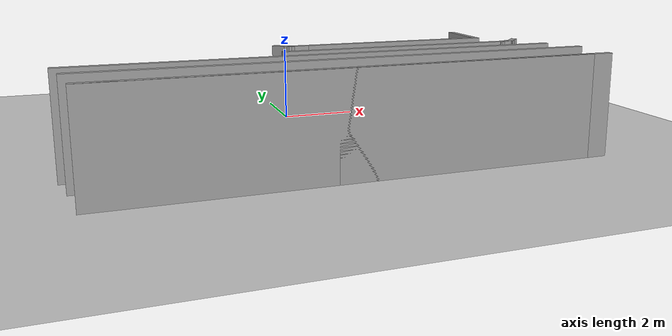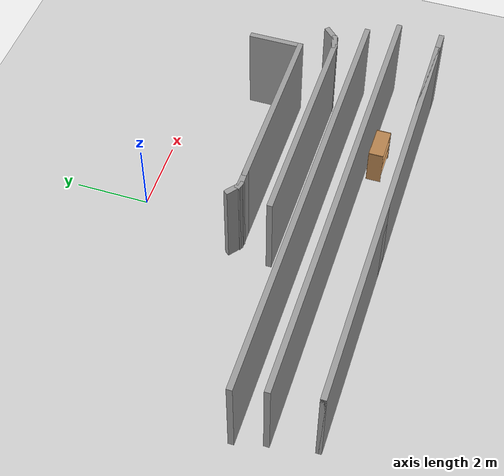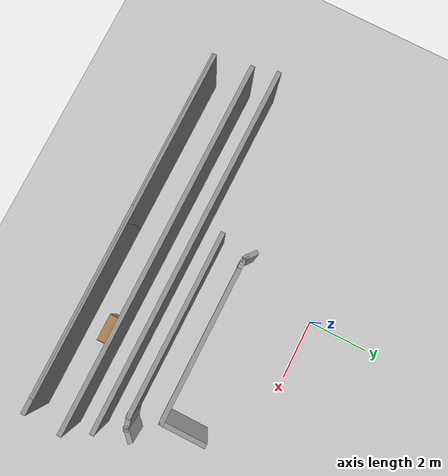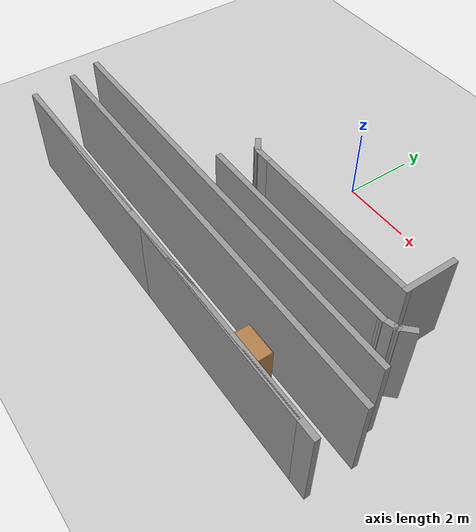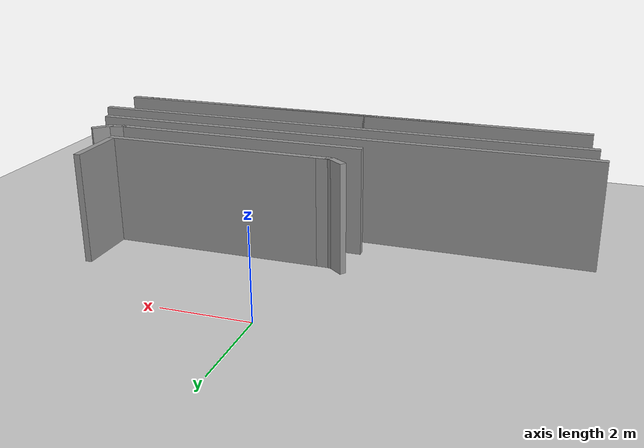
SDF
<sdf version="1.7">
 <world name="default">
  <model name="ground_plane">
   <static>1</static>
   <link name="link">
    <collision name="collision">
     <geometry><plane><normal>0 0 1</normal><size>100 100</size></plane></geometry>
     <surface>
      <contact><collide_bitmask>65535</collide_bitmask></contact>
      <friction><ode><mu>100</mu><mu2>50</mu2></ode></friction>
     </surface>
    </collision>
    <visual name="visual">
     <cast_shadows>0</cast_shadows>
     <geometry><plane><normal>0 0 1</normal><size>100 100</size></plane></geometry>
     <material>
      <script><uri>file://media/materials/scripts/gazebo.material</uri><name>Gazebo/Grey</name></script>
     </material>
    </visual>
   </link>
  </model>
  <model name="Race_Track">
   <link name="Wall_0">
    <pose>2.08957 -6.00796 0 0 -0 0</pose>
    <visual name="Wall_0_Visual">
     <pose>0 0 1.25 0 -0 0</pose>
     <geometry><box><size>6.25 0.15 2.5</size></box></geometry>
     <material>
      <script><uri>file://media/materials/scripts/gazebo.material</uri><name>Gazebo/Grey</name></script>
      <ambient>1 1 1 1</ambient>
      <shader type="pixel"/>
     </material>
     <meta><layer>0</layer></meta>
    </visual>
    <collision name="Wall_0_Collision">
     <pose>0 0 1.25 0 -0 0</pose>
     <geometry><box><size>6.25 0.15 2.5</size></box></geometry>
     <surface>
      <friction>
       <ode><mu>1</mu><mu2>1</mu2><fdir1>0 0 0</fdir1><slip1>0</slip1><slip2>0</slip2></ode>
       <torsional>
        <coefficient>1</coefficient>
        <patch_radius>0</patch_radius>
        <surface_radius>0</surface_radius>
        <use_patch_radius>1</use_patch_radius>
        <ode><slip>0</slip></ode>
       </torsional>
      </friction>
      <bounce><restitution_coefficient>0</restitution_coefficient><threshold>1e+06</threshold></bounce>
      <contact>
       <collide_without_contact>0</collide_without_contact>
       <collide_without_contact_bitmask>1</collide_without_contact_bitmask>
       <collide_bitmask>1</collide_bitmask>
       <ode>
        <soft_cfm>0</soft_cfm>
        <soft_erp>0.2</soft_erp>
        <kp>1e+13</kp>
        <kd>1</kd>
        <max_vel>0.01</max_vel>
        <min_depth>0</min_depth>
       </ode>
       <bullet>
        <split_impulse>1</split_impulse>
        <split_impulse_penetration_threshold>-0.01</split_impulse_penetration_threshold>
        <soft_cfm>0</soft_cfm>
        <soft_erp>0.2</soft_erp>
        <kp>1e+13</kp>
        <kd>1</kd>
       </bullet>
      </contact>
     </surface>
    </collision>
   </link>
   <link name="Wall_1">
    <pose>-0.535432 -6.00796 0 0 -0 3.14159</pose>
    <visual name="Wall_1_Visual">
     <pose>0 0 1.25 0 -0 0</pose>
     <geometry><box><size>11.5 0.15 2.5</size></box></geometry>
     <material>
      <script><uri>file://media/materials/scripts/gazebo.material</uri><name>Gazebo/Grey</name></script>
      <ambient>1 1 1 1</ambient>
      <shader type="pixel"/>
     </material>
     <meta><layer>0</layer></meta>
    </visual>
    <collision name="Wall_1_Collision">
     <pose>0 0 1.25 0 -0 0</pose>
     <geometry><box><size>11.5 0.15 2.5</size></box></geometry>
     <surface>
      <friction>
       <ode><mu>1</mu><mu2>1</mu2><fdir1>0 0 0</fdir1><slip1>0</slip1><slip2>0</slip2></ode>
       <torsional>
        <coefficient>1</coefficient>
        <patch_radius>0</patch_radius>
        <surface_radius>0</surface_radius>
        <use_patch_radius>1</use_patch_radius>
        <ode><slip>0</slip></ode>
       </torsional>
      </friction>
      <bounce><restitution_coefficient>0</restitution_coefficient><threshold>1e+06</threshold></bounce>
      <contact>
       <collide_without_contact>0</collide_without_contact>
       <collide_without_contact_bitmask>1</collide_without_contact_bitmask>
       <collide_bitmask>1</collide_bitmask>
       <ode>
        <soft_cfm>0</soft_cfm>
        <soft_erp>0.2</soft_erp>
        <kp>1e+13</kp>
        <kd>1</kd>
        <max_vel>0.01</max_vel>
        <min_depth>0</min_depth>
       </ode>
       <bullet>
        <split_impulse>1</split_impulse>
        <split_impulse_penetration_threshold>-0.01</split_impulse_penetration_threshold>
        <soft_cfm>0</soft_cfm>
        <soft_erp>0.2</soft_erp>
        <kp>1e+13</kp>
        <kd>1</kd>
       </bullet>
      </contact>
     </surface>
    </collision>
   </link>
   <link name="Wall_123">
    <pose>-0.672789 -4.00099 0 0 -0 0</pose>
    <visual name="Wall_123_Visual">
     <pose>0 0 1.25 0 -0 0</pose>
     <geometry><box><size>12 0.15 2.5</size></box></geometry>
     <material>
      <script><uri>file://media/materials/scripts/gazebo.material</uri><name>Gazebo/Grey</name></script>
      <ambient>1 1 1 1</ambient>
      <shader type="pixel"/>
     </material>
     <meta><layer>0</layer></meta>
    </visual>
    <collision name="Wall_123_Collision">
     <pose>0 0 1.25 0 -0 0</pose>
     <geometry><box><size>12 0.15 2.5</size></box></geometry>
     <surface>
      <friction>
       <ode><mu>1</mu><mu2>1</mu2><fdir1>0 0 0</fdir1><slip1>0</slip1><slip2>0</slip2></ode>
       <torsional>
        <coefficient>1</coefficient>
        <patch_radius>0</patch_radius>
        <surface_radius>0</surface_radius>
        <use_patch_radius>1</use_patch_radius>
        <ode><slip>0</slip></ode>
       </torsional>
      </friction>
      <bounce><restitution_coefficient>0</restitution_coefficient><threshold>1e+06</threshold></bounce>
      <contact>
       <collide_without_contact>0</collide_without_contact>
       <collide_without_contact_bitmask>1</collide_without_contact_bitmask>
       <collide_bitmask>1</collide_bitmask>
       <ode>
        <soft_cfm>0</soft_cfm>
        <soft_erp>0.2</soft_erp>
        <kp>1e+13</kp>
        <kd>1</kd>
        <max_vel>0.01</max_vel>
        <min_depth>0</min_depth>
       </ode>
       <bullet>
        <split_impulse>1</split_impulse>
        <split_impulse_penetration_threshold>-0.01</split_impulse_penetration_threshold>
        <soft_cfm>0</soft_cfm>
        <soft_erp>0.2</soft_erp>
        <kp>1e+13</kp>
        <kd>1</kd>
       </bullet>
      </contact>
     </surface>
    </collision>
   </link>
   <link name="Wall_175">
    <pose>1.47041 -3.30041 0 0 -0 0</pose>
    <visual name="Wall_175_Visual">
     <pose>0 0 1.25 0 -0 0</pose>
     <geometry><box><size>6 0.15 2.5</size></box></geometry>
     <material>
      <script><uri>file://media/materials/scripts/gazebo.material</uri><name>Gazebo/Grey</name></script>
      <ambient>1 1 1 1</ambient>
      <shader type="pixel"/>
     </material>
     <meta><layer>0</layer></meta>
    </visual>
    <collision name="Wall_175_Collision">
     <pose>0 0 1.25 0 -0 0</pose>
     <geometry><box><size>6 0.15 2.5</size></box></geometry>
     <surface>
      <friction>
       <ode><mu>1</mu><mu2>1</mu2><fdir1>0 0 0</fdir1><slip1>0</slip1><slip2>0</slip2></ode>
       <torsional>
        <coefficient>1</coefficient>
        <patch_radius>0</patch_radius>
        <surface_radius>0</surface_radius>
        <use_patch_radius>1</use_patch_radius>
        <ode><slip>0</slip></ode>
       </torsional>
      </friction>
      <bounce><restitution_coefficient>0</restitution_coefficient><threshold>1e+06</threshold></bounce>
      <contact>
       <collide_without_contact>0</collide_without_contact>
       <collide_without_contact_bitmask>1</collide_without_contact_bitmask>
       <collide_bitmask>1</collide_bitmask>
       <ode>
        <soft_cfm>0</soft_cfm>
        <soft_erp>0.2</soft_erp>
        <kp>1e+13</kp>
        <kd>1</kd>
        <max_vel>0.01</max_vel>
        <min_depth>0</min_depth>
       </ode>
       <bullet>
        <split_impulse>1</split_impulse>
        <split_impulse_penetration_threshold>-0.01</split_impulse_penetration_threshold>
        <soft_cfm>0</soft_cfm>
        <soft_erp>0.2</soft_erp>
        <kp>1e+13</kp>
        <kd>1</kd>
       </bullet>
      </contact>
     </surface>
    </collision>
   </link>
   <link name="Wall_182">
    <pose>4.56445 -3.25511 0 0 -0 0.261799</pose>
    <visual name="Wall_182_Visual">
     <pose>0 0 1.25 0 -0 0</pose>
     <geometry><box><size>0.5 0.15 2.5</size></box></geometry>
     <material>
      <script><uri>file://media/materials/scripts/gazebo.material</uri><name>Gazebo/Grey</name></script>
      <ambient>1 1 1 1</ambient>
      <shader type="pixel"/>
     </material>
     <meta><layer>0</layer></meta>
    </visual>
    <collision name="Wall_182_Collision">
     <pose>0 0 1.25 0 -0 0</pose>
     <geometry><box><size>0.5 0.15 2.5</size></box></geometry>
     <surface>
      <friction>
       <ode><mu>1</mu><mu2>1</mu2><fdir1>0 0 0</fdir1><slip1>0</slip1><slip2>0</slip2></ode>
       <torsional>
        <coefficient>1</coefficient>
        <patch_radius>0</patch_radius>
        <surface_radius>0</surface_radius>
        <use_patch_radius>1</use_patch_radius>
        <ode><slip>0</slip></ode>
       </torsional>
      </friction>
      <bounce><restitution_coefficient>0</restitution_coefficient><threshold>1e+06</threshold></bounce>
      <contact>
       <collide_without_contact>0</collide_without_contact>
       <collide_without_contact_bitmask>1</collide_without_contact_bitmask>
       <collide_bitmask>1</collide_bitmask>
       <ode>
        <soft_cfm>0</soft_cfm>
        <soft_erp>0.2</soft_erp>
        <kp>1e+13</kp>
        <kd>1</kd>
        <max_vel>0.01</max_vel>
        <min_depth>0</min_depth>
       </ode>
       <bullet>
        <split_impulse>1</split_impulse>
        <split_impulse_penetration_threshold>-0.01</split_impulse_penetration_threshold>
        <soft_cfm>0</soft_cfm>
        <soft_erp>0.2</soft_erp>
        <kp>1e+13</kp>
        <kd>1</kd>
       </bullet>
      </contact>
     </surface>
    </collision>
   </link>
   <link name="Wall_183">
    <pose>4.85723 -3.08608 0 0 -0 0.785398</pose>
    <visual name="Wall_183_Visual">
     <pose>0 0 1.25 0 -0 0</pose>
     <geometry><box><size>0.5 0.15 2.5</size></box></geometry>
     <material>
      <script><uri>file://media/materials/scripts/gazebo.material</uri><name>Gazebo/Grey</name></script>
      <ambient>1 1 1 1</ambient>
      <shader type="pixel"/>
     </material>
     <meta><layer>0</layer></meta>
    </visual>
    <collision name="Wall_183_Collision">
     <pose>0 0 1.25 0 -0 0</pose>
     <geometry><box><size>0.5 0.15 2.5</size></box></geometry>
     <surface>
      <friction>
       <ode><mu>1</mu><mu2>1</mu2><fdir1>0 0 0</fdir1><slip1>0</slip1><slip2>0</slip2></ode>
       <torsional>
        <coefficient>1</coefficient>
        <patch_radius>0</patch_radius>
        <surface_radius>0</surface_radius>
        <use_patch_radius>1</use_patch_radius>
        <ode><slip>0</slip></ode>
       </torsional>
      </friction>
      <bounce><restitution_coefficient>0</restitution_coefficient><threshold>1e+06</threshold></bounce>
      <contact>
       <collide_without_contact>0</collide_without_contact>
       <collide_without_contact_bitmask>1</collide_without_contact_bitmask>
       <collide_bitmask>1</collide_bitmask>
       <ode>
        <soft_cfm>0</soft_cfm>
        <soft_erp>0.2</soft_erp>
        <kp>1e+13</kp>
        <kd>1</kd>
        <max_vel>0.01</max_vel>
        <min_depth>0</min_depth>
       </ode>
       <bullet>
        <split_impulse>1</split_impulse>
        <split_impulse_penetration_threshold>-0.01</split_impulse_penetration_threshold>
        <soft_cfm>0</soft_cfm>
        <soft_erp>0.2</soft_erp>
        <kp>1e+13</kp>
        <kd>1</kd>
       </bullet>
      </contact>
     </surface>
    </collision>
   </link>
   <link name="Wall_193">
    <pose>4.13514 -1.72233 0 0 0 -1.5708</pose>
    <visual name="Wall_193_Visual">
     <pose>0 0 1.25 0 -0 0</pose>
     <geometry><box><size>1.5 0.15 2.5</size></box></geometry>
     <material>
      <script><uri>file://media/materials/scripts/gazebo.material</uri><name>Gazebo/Grey</name></script>
      <ambient>1 1 1 1</ambient>
      <shader type="pixel"/>
     </material>
     <meta><layer>0</layer></meta>
    </visual>
    <collision name="Wall_193_Collision">
     <pose>0 0 1.25 0 -0 0</pose>
     <geometry><box><size>1.5 0.15 2.5</size></box></geometry>
     <surface>
      <friction>
       <ode><mu>1</mu><mu2>1</mu2><fdir1>0 0 0</fdir1><slip1>0</slip1><slip2>0</slip2></ode>
       <torsional>
        <coefficient>1</coefficient>
        <patch_radius>0</patch_radius>
        <surface_radius>0</surface_radius>
        <use_patch_radius>1</use_patch_radius>
        <ode><slip>0</slip></ode>
       </torsional>
      </friction>
      <bounce><restitution_coefficient>0</restitution_coefficient><threshold>1e+06</threshold></bounce>
      <contact>
       <collide_without_contact>0</collide_without_contact>
       <collide_without_contact_bitmask>1</collide_without_contact_bitmask>
       <collide_bitmask>1</collide_bitmask>
       <ode>
        <soft_cfm>0</soft_cfm>
        <soft_erp>0.2</soft_erp>
        <kp>1e+13</kp>
        <kd>1</kd>
        <max_vel>0.01</max_vel>
        <min_depth>0</min_depth>
       </ode>
       <bullet>
        <split_impulse>1</split_impulse>
        <split_impulse_penetration_threshold>-0.01</split_impulse_penetration_threshold>
        <soft_cfm>0</soft_cfm>
        <soft_erp>0.2</soft_erp>
        <kp>1e+13</kp>
        <kd>1</kd>
       </bullet>
      </contact>
     </surface>
    </collision>
   </link>
   <link name="Wall_199">
    <pose>1.71015 -2.39733 0 0 -0 3.14159</pose>
    <visual name="Wall_199_Visual">
     <pose>0 0 1.25 0 -0 0</pose>
     <geometry><box><size>5 0.15 2.5</size></box></geometry>
     <material>
      <script><uri>file://media/materials/scripts/gazebo.material</uri><name>Gazebo/Grey</name></script>
      <ambient>1 1 1 1</ambient>
      <shader type="pixel"/>
     </material>
     <meta><layer>0</layer></meta>
    </visual>
    <collision name="Wall_199_Collision">
     <pose>0 0 1.25 0 -0 0</pose>
     <geometry><box><size>5 0.15 2.5</size></box></geometry>
     <surface>
      <friction>
       <ode><mu>1</mu><mu2>1</mu2><fdir1>0 0 0</fdir1><slip1>0</slip1><slip2>0</slip2></ode>
       <torsional>
        <coefficient>1</coefficient>
        <patch_radius>0</patch_radius>
        <surface_radius>0</surface_radius>
        <use_patch_radius>1</use_patch_radius>
        <ode><slip>0</slip></ode>
       </torsional>
      </friction>
      <bounce><restitution_coefficient>0</restitution_coefficient><threshold>1e+06</threshold></bounce>
      <contact>
       <collide_without_contact>0</collide_without_contact>
       <collide_without_contact_bitmask>1</collide_without_contact_bitmask>
       <collide_bitmask>1</collide_bitmask>
       <ode>
        <soft_cfm>0</soft_cfm>
        <soft_erp>0.2</soft_erp>
        <kp>1e+13</kp>
        <kd>1</kd>
        <max_vel>0.01</max_vel>
        <min_depth>0</min_depth>
       </ode>
       <bullet>
        <split_impulse>1</split_impulse>
        <split_impulse_penetration_threshold>-0.01</split_impulse_penetration_threshold>
        <soft_cfm>0</soft_cfm>
        <soft_erp>0.2</soft_erp>
        <kp>1e+13</kp>
        <kd>1</kd>
       </bullet>
      </contact>
     </surface>
    </collision>
   </link>
   <link name="Wall_2">
    <pose>-0.285432 -6.00796 0 0 -0 0</pose>
    <visual name="Wall_2_Visual">
     <pose>0 0 1.25 0 -0 0</pose>
     <geometry><box><size>12 0.15 2.5</size></box></geometry>
     <material>
      <script><uri>file://media/materials/scripts/gazebo.material</uri><name>Gazebo/Grey</name></script>
      <ambient>1 1 1 1</ambient>
      <shader type="pixel"/>
     </material>
     <meta><layer>0</layer></meta>
    </visual>
    <collision name="Wall_2_Collision">
     <pose>0 0 1.25 0 -0 0</pose>
     <geometry><box><size>12 0.15 2.5</size></box></geometry>
     <surface>
      <friction>
       <ode><mu>1</mu><mu2>1</mu2><fdir1>0 0 0</fdir1><slip1>0</slip1><slip2>0</slip2></ode>
       <torsional>
        <coefficient>1</coefficient>
        <patch_radius>0</patch_radius>
        <surface_radius>0</surface_radius>
        <use_patch_radius>1</use_patch_radius>
        <ode><slip>0</slip></ode>
       </torsional>
      </friction>
      <bounce><restitution_coefficient>0</restitution_coefficient><threshold>1e+06</threshold></bounce>
      <contact>
       <collide_without_contact>0</collide_without_contact>
       <collide_without_contact_bitmask>1</collide_without_contact_bitmask>
       <collide_bitmask>1</collide_bitmask>
       <ode>
        <soft_cfm>0</soft_cfm>
        <soft_erp>0.2</soft_erp>
        <kp>1e+13</kp>
        <kd>1</kd>
        <max_vel>0.01</max_vel>
        <min_depth>0</min_depth>
       </ode>
       <bullet>
        <split_impulse>1</split_impulse>
        <split_impulse_penetration_threshold>-0.01</split_impulse_penetration_threshold>
        <soft_cfm>0</soft_cfm>
        <soft_erp>0.2</soft_erp>
        <kp>1e+13</kp>
        <kd>1</kd>
       </bullet>
      </contact>
     </surface>
    </collision>
   </link>
   <link name="Wall_203">
    <pose>-0.889855 -2.39733 0 0 -0 3.14159</pose>
    <visual name="Wall_203_Visual">
     <pose>0 0 1.25 0 -0 0</pose>
     <geometry><box><size>0.5 0.15 2.5</size></box></geometry>
     <material>
      <script><uri>file://media/materials/scripts/gazebo.material</uri><name>Gazebo/Grey</name></script>
      <ambient>1 1 1 1</ambient>
      <shader type="pixel"/>
     </material>
     <meta><layer>0</layer></meta>
    </visual>
    <collision name="Wall_203_Collision">
     <pose>0 0 1.25 0 -0 0</pose>
     <geometry><box><size>0.5 0.15 2.5</size></box></geometry>
     <surface>
      <friction>
       <ode><mu>1</mu><mu2>1</mu2><fdir1>0 0 0</fdir1><slip1>0</slip1><slip2>0</slip2></ode>
       <torsional>
        <coefficient>1</coefficient>
        <patch_radius>0</patch_radius>
        <surface_radius>0</surface_radius>
        <use_patch_radius>1</use_patch_radius>
        <ode><slip>0</slip></ode>
       </torsional>
      </friction>
      <bounce><restitution_coefficient>0</restitution_coefficient><threshold>1e+06</threshold></bounce>
      <contact>
       <collide_without_contact>0</collide_without_contact>
       <collide_without_contact_bitmask>1</collide_without_contact_bitmask>
       <collide_bitmask>1</collide_bitmask>
       <ode>
        <soft_cfm>0</soft_cfm>
        <soft_erp>0.2</soft_erp>
        <kp>1e+13</kp>
        <kd>1</kd>
        <max_vel>0.01</max_vel>
        <min_depth>0</min_depth>
       </ode>
       <bullet>
        <split_impulse>1</split_impulse>
        <split_impulse_penetration_threshold>-0.01</split_impulse_penetration_threshold>
        <soft_cfm>0</soft_cfm>
        <soft_erp>0.2</soft_erp>
        <kp>1e+13</kp>
        <kd>1</kd>
       </bullet>
      </contact>
     </surface>
    </collision>
   </link>
   <link name="Wall_205">
    <pose>-1.11315 -2.38439 0 0 -0 2.87979</pose>
    <visual name="Wall_205_Visual">
     <pose>0 0 1.25 0 -0 0</pose>
     <geometry><box><size>0.25 0.15 2.5</size></box></geometry>
     <material>
      <script><uri>file://media/materials/scripts/gazebo.material</uri><name>Gazebo/Grey</name></script>
      <ambient>1 1 1 1</ambient>
      <shader type="pixel"/>
     </material>
     <meta><layer>0</layer></meta>
    </visual>
    <collision name="Wall_205_Collision">
     <pose>0 0 1.25 0 -0 0</pose>
     <geometry><box><size>0.25 0.15 2.5</size></box></geometry>
     <surface>
      <friction>
       <ode><mu>1</mu><mu2>1</mu2><fdir1>0 0 0</fdir1><slip1>0</slip1><slip2>0</slip2></ode>
       <torsional>
        <coefficient>1</coefficient>
        <patch_radius>0</patch_radius>
        <surface_radius>0</surface_radius>
        <use_patch_radius>1</use_patch_radius>
        <ode><slip>0</slip></ode>
       </torsional>
      </friction>
      <bounce><restitution_coefficient>0</restitution_coefficient><threshold>1e+06</threshold></bounce>
      <contact>
       <collide_without_contact>0</collide_without_contact>
       <collide_without_contact_bitmask>1</collide_without_contact_bitmask>
       <collide_bitmask>1</collide_bitmask>
       <ode>
        <soft_cfm>0</soft_cfm>
        <soft_erp>0.2</soft_erp>
        <kp>1e+13</kp>
        <kd>1</kd>
        <max_vel>0.01</max_vel>
        <min_depth>0</min_depth>
       </ode>
       <bullet>
        <split_impulse>1</split_impulse>
        <split_impulse_penetration_threshold>-0.01</split_impulse_penetration_threshold>
        <soft_cfm>0</soft_cfm>
        <soft_erp>0.2</soft_erp>
        <kp>1e+13</kp>
        <kd>1</kd>
       </bullet>
      </contact>
     </surface>
    </collision>
   </link>
   <link name="Wall_212">
    <pose>-1.28223 -2.27727 0 0 0 -0.662298</pose>
    <visual name="Wall_212_Visual">
     <pose>0 0 1.25 0 -0 0</pose>
     <geometry><box><size>0.456318 0.15 2.5</size></box></geometry>
     <material>
      <script><uri>file://media/materials/scripts/gazebo.material</uri><name>Gazebo/Grey</name></script>
      <ambient>1 1 1 1</ambient>
      <shader type="pixel"/>
     </material>
     <meta><layer>0</layer></meta>
    </visual>
    <collision name="Wall_212_Collision">
     <pose>0 0 1.25 0 -0 0</pose>
     <geometry><box><size>0.456318 0.15 2.5</size></box></geometry>
     <surface>
      <friction>
       <ode><mu>1</mu><mu2>1</mu2><fdir1>0 0 0</fdir1><slip1>0</slip1><slip2>0</slip2></ode>
       <torsional>
        <coefficient>1</coefficient>
        <patch_radius>0</patch_radius>
        <surface_radius>0</surface_radius>
        <use_patch_radius>1</use_patch_radius>
        <ode><slip>0</slip></ode>
       </torsional>
      </friction>
      <bounce><restitution_coefficient>0</restitution_coefficient><threshold>1e+06</threshold></bounce>
      <contact>
       <collide_without_contact>0</collide_without_contact>
       <collide_without_contact_bitmask>1</collide_without_contact_bitmask>
       <collide_bitmask>1</collide_bitmask>
       <ode>
        <soft_cfm>0</soft_cfm>
        <soft_erp>0.2</soft_erp>
        <kp>1e+13</kp>
        <kd>1</kd>
        <max_vel>0.01</max_vel>
        <min_depth>0</min_depth>
       </ode>
       <bullet>
        <split_impulse>1</split_impulse>
        <split_impulse_penetration_threshold>-0.01</split_impulse_penetration_threshold>
        <soft_cfm>0</soft_cfm>
        <soft_erp>0.2</soft_erp>
        <kp>1e+13</kp>
        <kd>1</kd>
       </bullet>
      </contact>
     </surface>
    </collision>
   </link>
   <link name="Wall_40">
    <pose>-0.356376 -4.80553 0 0 -0 0</pose>
    <visual name="Wall_40_Visual">
     <pose>0 0 1.25 0 -0 0</pose>
     <geometry><box><size>12.25 0.15 2.5</size></box></geometry>
     <material>
      <script><uri>file://media/materials/scripts/gazebo.material</uri><name>Gazebo/Grey</name></script>
      <ambient>1 1 1 1</ambient>
      <shader type="pixel"/>
     </material>
     <meta><layer>0</layer></meta>
    </visual>
    <collision name="Wall_40_Collision">
     <pose>0 0 1.25 0 -0 0</pose>
     <geometry><box><size>12.25 0.15 2.5</size></box></geometry>
     <surface>
      <friction>
       <ode><mu>1</mu><mu2>1</mu2><fdir1>0 0 0</fdir1><slip1>0</slip1><slip2>0</slip2></ode>
       <torsional>
        <coefficient>1</coefficient>
        <patch_radius>0</patch_radius>
        <surface_radius>0</surface_radius>
        <use_patch_radius>1</use_patch_radius>
        <ode><slip>0</slip></ode>
       </torsional>
      </friction>
      <bounce><restitution_coefficient>0</restitution_coefficient><threshold>1e+06</threshold></bounce>
      <contact>
       <collide_without_contact>0</collide_without_contact>
       <collide_without_contact_bitmask>1</collide_without_contact_bitmask>
       <collide_bitmask>1</collide_bitmask>
       <ode>
        <soft_cfm>0</soft_cfm>
        <soft_erp>0.2</soft_erp>
        <kp>1e+13</kp>
        <kd>1</kd>
        <max_vel>0.01</max_vel>
        <min_depth>0</min_depth>
       </ode>
       <bullet>
        <split_impulse>1</split_impulse>
        <split_impulse_penetration_threshold>-0.01</split_impulse_penetration_threshold>
        <soft_cfm>0</soft_cfm>
        <soft_erp>0.2</soft_erp>
        <kp>1e+13</kp>
        <kd>1</kd>
       </bullet>
      </contact>
     </surface>
    </collision>
   </link>
   <model name="bookshelf_0">
    <static>1</static>
    <link name="link">
     <inertial><mass>1</mass></inertial>
     <collision name="back">
      <pose>0 0.005 0.6 0 -0 0</pose>
      <geometry><box><size>0.9 0.01 1.2</size></box></geometry>
     </collision>
     <visual name="visual1">
      <pose>0 0.005 0.6 0 -0 0</pose>
      <geometry><box><size>0.9 0.01 1.2</size></box></geometry>
      <material>
       <script><uri>file://media/materials/scripts/gazebo.material</uri><name>Gazebo/Wood</name></script>
      </material>
     </visual>
     <collision name="left_side">
      <pose>0.45 -0.195 0.6 0 -0 0</pose>
      <geometry><box><size>0.02 0.4 1.2</size></box></geometry>
     </collision>
     <visual name="visual2">
      <pose>0.45 -0.195 0.6 0 -0 0</pose>
      <geometry><box><size>0.02 0.4 1.2</size></box></geometry>
      <material>
       <script><uri>file://media/materials/scripts/gazebo.material</uri><name>Gazebo/Wood</name></script>
      </material>
     </visual>
     <collision name="right_side">
      <pose>-0.45 -0.195 0.6 0 -0 0</pose>
      <geometry><box><size>0.02 0.4 1.2</size></box></geometry>
     </collision>
     <visual name="visual3">
      <pose>-0.45 -0.195 0.6 0 -0 0</pose>
      <geometry><box><size>0.02 0.4 1.2</size></box></geometry>
      <material>
       <script><uri>file://media/materials/scripts/gazebo.material</uri><name>Gazebo/Wood</name></script>
      </material>
     </visual>
     <collision name="bottom">
      <pose>0 -0.195 0.03 0 -0 0</pose>
      <geometry><box><size>0.88 0.4 0.06</size></box></geometry>
     </collision>
     <visual name="visual4">
      <pose>0 -0.195 0.03 0 -0 0</pose>
      <geometry><box><size>0.88 0.4 0.06</size></box></geometry>
      <material>
       <script><uri>file://media/materials/scripts/gazebo.material</uri><name>Gazebo/Wood</name></script>
      </material>
     </visual>
     <collision name="top">
      <pose>0 -0.195 1.19 0 -0 0</pose>
      <geometry><box><size>0.88 0.4 0.02</size></box></geometry>
     </collision>
     <visual name="visual5">
      <pose>0 -0.195 1.19 0 -0 0</pose>
      <geometry><box><size>0.88 0.4 0.02</size></box></geometry>
      <material>
       <script><uri>file://media/materials/scripts/gazebo.material</uri><name>Gazebo/Wood</name></script>
      </material>
     </visual>
     <collision name="low_shelf">
      <pose>0 -0.195 0.43 0 -0 0</pose>
      <geometry><box><size>0.88 0.4 0.02</size></box></geometry>
     </collision>
     <visual name="visual6">
      <pose>0 -0.195 0.43 0 -0 0</pose>
      <geometry><box><size>0.88 0.4 0.02</size></box></geometry>
      <material>
       <script><uri>file://media/materials/scripts/gazebo.material</uri><name>Gazebo/Wood</name></script>
      </material>
     </visual>
     <collision name="high_shelf">
      <pose>0 -0.195 0.8 0 -0 0</pose>
      <geometry><box><size>0.88 0.4 0.02</size></box></geometry>
     </collision>
     <visual name="visual7">
      <pose>0 -0.195 0.8 0 -0 0</pose>
      <geometry><box><size>0.88 0.4 0.02</size></box></geometry>
      <material>
       <script><uri>file://media/materials/scripts/gazebo.material</uri><name>Gazebo/Wood</name></script>
      </material>
     </visual>
    </link>
    <pose>2.63462 -4.96152 -0.178331 0 -0 0</pose>
   </model>
   <static>1</static>
   <pose>0.482814 -0.498319 0 0 -0 0</pose>
  </model>
 </world>
</sdf>
